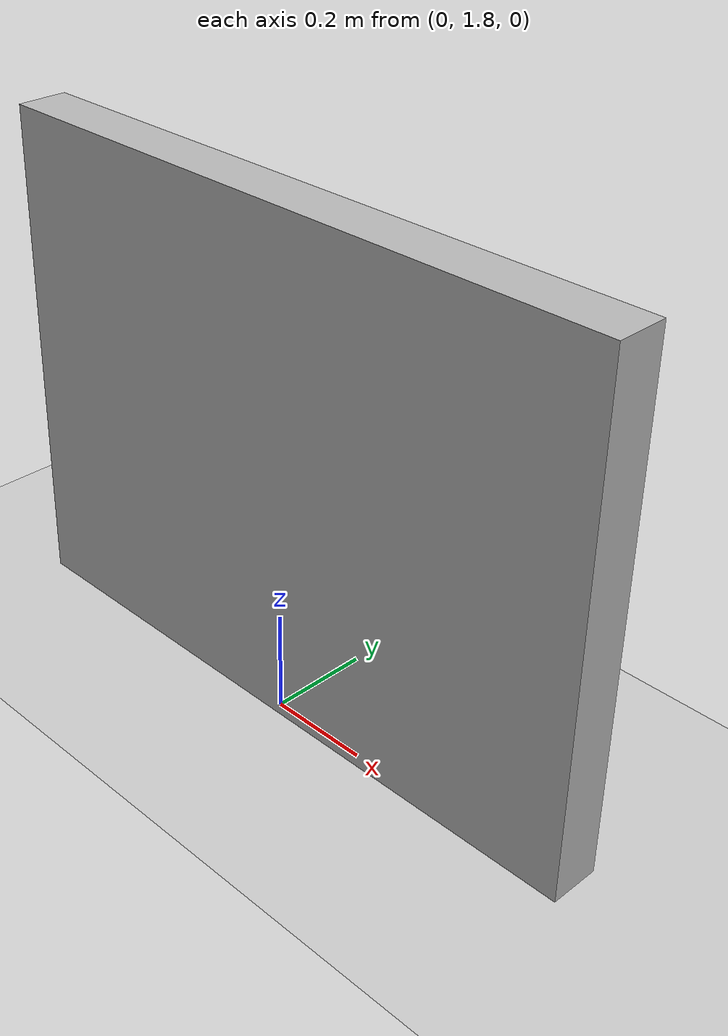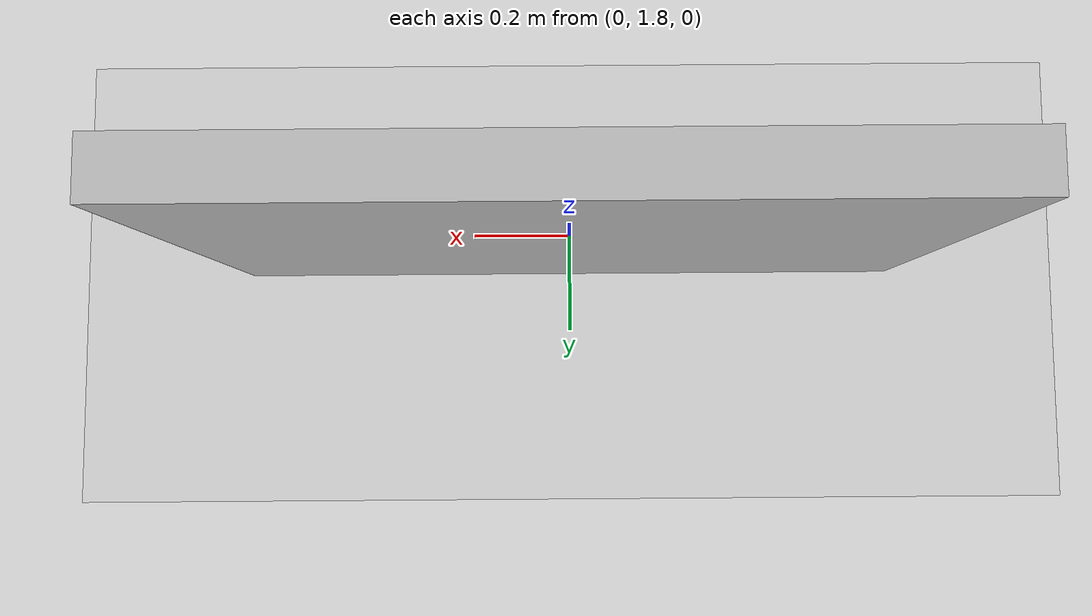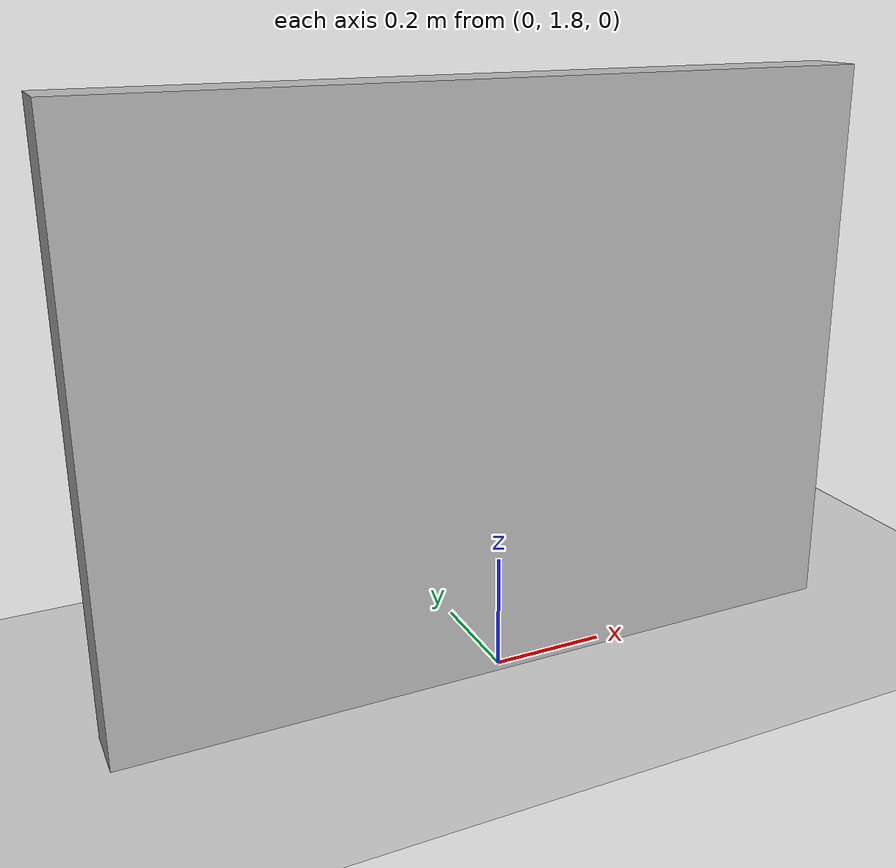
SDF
<?xml version="1.0" ?>

<sdf version="1.6">
  <world name="default">

    <include>
      <uri>model://sun</uri>
    </include>
    <include>
      <uri>model://ground_plane</uri>
    </include>
    <include>
      <uri>model://Wall</uri>
    </include>

  </world>
</sdf>

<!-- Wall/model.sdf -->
<sdf version='1.6'>
  <model name='Wall'>
    <link name='main'>
    <pose frame=''>0 1.83 0.5 0 0 0</pose>
      <visual name='main_Visual'>
        <geometry>
          <box>
            <size>1.33333 0.1 1.0</size>
          </box>
        </geometry>
        <material>
          <script>
            <uri>model://Wall/materials/scripts</uri>
            <uri>model://Wall/materials/textures</uri>
            <name>Wall</name>
          </script>
        </material>
      </visual>
     </link>
    <static>1</static>
  </model>
</sdf>
